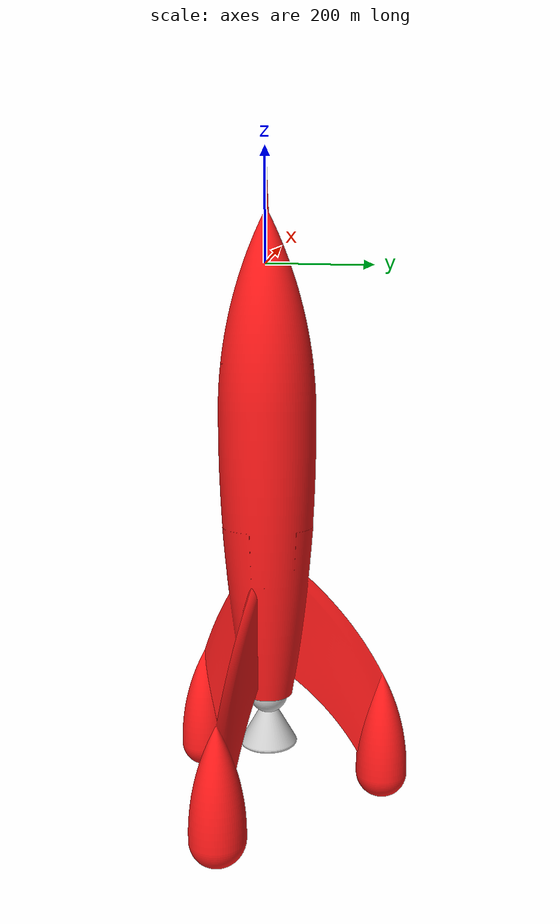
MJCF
<mujoco model="tintin_rocket">
  <!-- G1-style header -->
  <compiler angle="radian" meshdir="assets"/>

  <option integrator="implicitfast" gravity="0 0 -1.63" timestep="0.002"/>
  <size njmax="4000" nconmax="1000"/>

  <default>
    <default class="rocket">
      <site rgba="1 0 0 1" size="0.01" group="5"/>

      <!-- No internal joints now (rigid rocket+engine), but keep consistent defaults -->
      <joint armature="0.005" damping="0.05" frictionloss="0.0"/>
      <position kp="500" dampratio="1" inheritrange="1"/>

      <!-- Visual-only meshes (no contact) -->
      <default class="visual">
        <geom group="2" type="mesh" contype="0" conaffinity="0" density="0" material="metal"/>
      </default>

      <!-- Collision meshes -->
      <default class="collision">
        <geom group="3" type="mesh" contype="1" conaffinity="1" condim="3" friction="0.9 0.02 0.001"/>
      </default>
    </default>
  </default>

  <asset>
    <material name="black" rgba="1 0.1 0.1 1"/>
    <material name="metal" rgba="0.8 0.8 0.8 1"/>
    <material name="thrust_flame" rgba="1 0.6 0 0.6"/>

    <!-- STL meshes -->
    <mesh name="tintin_body_mesh"   file="tintin_rocket_scaled.stl"/>
    <mesh name="tintin_engine_mesh" file="tintin_engine.stl"/>
  </asset>

  <worldbody>
    <!-- Rigid rocket (body + engine) with free base -->
    <body name="rocket" pos="0 0 1.2" childclass="rocket">
      <inertial pos="0 0 -1" mass="100" diaginertia="1.22 1.22 0.37"/>
      <freejoint name="floating_base_joint"/>

      <!-- Rocket visuals/collision -->
      <geom class="visual"    material="black" mesh="tintin_body_mesh"/>
      <geom class="collision"                 mesh="tintin_body_mesh"/>

      <!-- Engine visuals/collision, rigidly welded under rocket -->
      <geom class="visual"    mesh="tintin_engine_mesh" pos="0 0 -0.80442"/>
      <geom class="collision" mesh="tintin_engine_mesh" pos="0 0 -0.80442"/>

      <!-- Telemetry site at COM -->
      <site name="imu_in_body" size="0.01" pos="0 0 0"/>

      <!-- Nozzle site where forces are applied. -->
      <!-- +X, +Y, +Z of the SITE define force-component directions. -->
      <site name="thrust_site" pos="0 0 -0.80442" size="0.015" rgba="1 0.2 0.2 1"/>

      <body name="thrust_vis_frame" pos="0 0 -0.80442">
        <!-- initial small plume: radius=0.03 m, half-height h=0.05 m -->
        <geom name="thrust_cylinder" type="cylinder"
              material="thrust_flame"
              size="0.03 0.05"
              pos="0 0 -0.05"
              contype="0" conaffinity="0"/>
      </body>
    </body>
  </worldbody>

  <actuator>
    <!-- Apply force components at the nozzle site (in site frame) -->
    <!-- Fx, Fy (lateral). Limit to emulate max gimbal angle. -->
    <general name="thrust_Fx" site="thrust_site"
             gear="1 0 0   0 0 0"
             ctrllimited="true" ctrlrange="-1 1"/>
    <general name="thrust_Fy" site="thrust_site"
             gear="0 1 0   0 0 0"
             ctrllimited="true" ctrlrange="-1 1"/>

    <!-- Fz (main axial thrust) -->
    <general name="thrust_Fz" site="thrust_site"
             gear="0 0 1   0 0 0"
             ctrllimited="true" ctrlrange="0 100000"/>
  </actuator>

  <sensor>
    <gyro           name="imu-angular-velocity" site="imu_in_body" noise="5e-4" cutoff="35"/>
    <accelerometer  name="imu-linear-accel"     site="imu_in_body" noise="1e-2" cutoff="157"/>
    <actuatorfrc    name="Fx_readback" actuator="thrust_Fx"/>
    <actuatorfrc    name="Fy_readback" actuator="thrust_Fy"/>
    <actuatorfrc    name="Fz_readback" actuator="thrust_Fz"/>
  </sensor>

  <keyframe>
    <key name="spawn" qpos="0 0 1.2   1 0 0 0" ctrl="0 0 0"/>
  </keyframe>
</mujoco>
